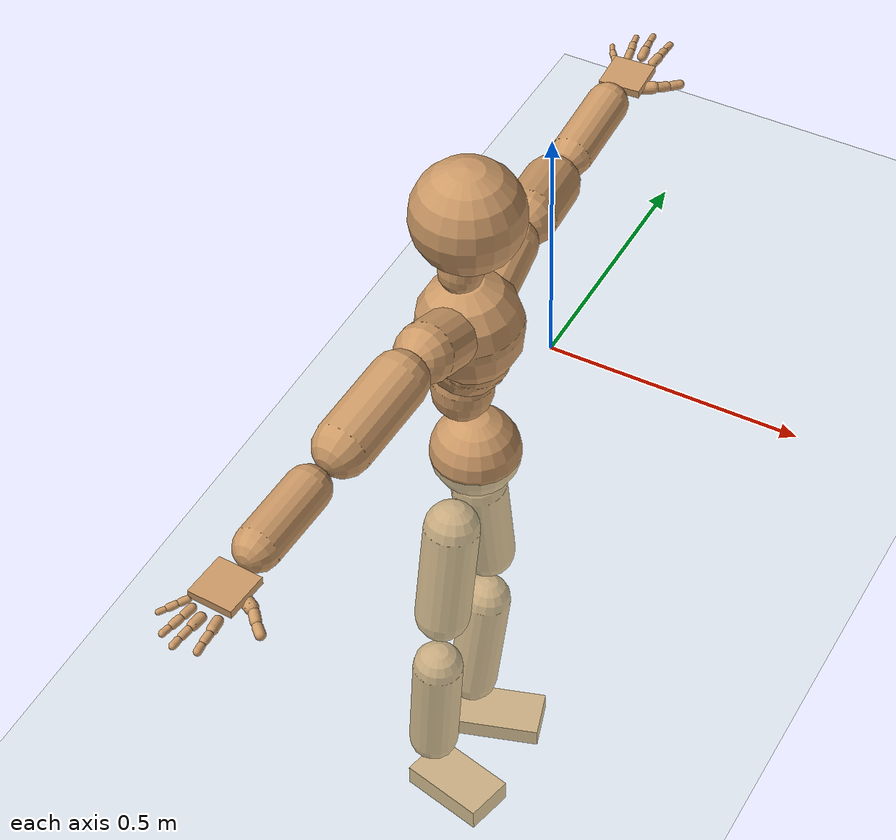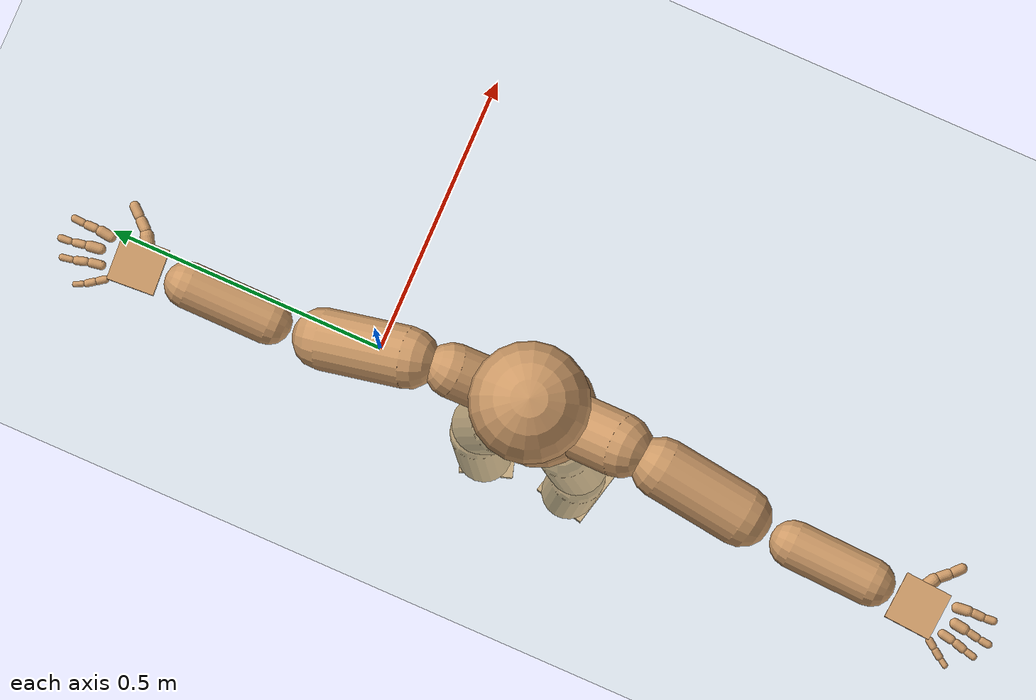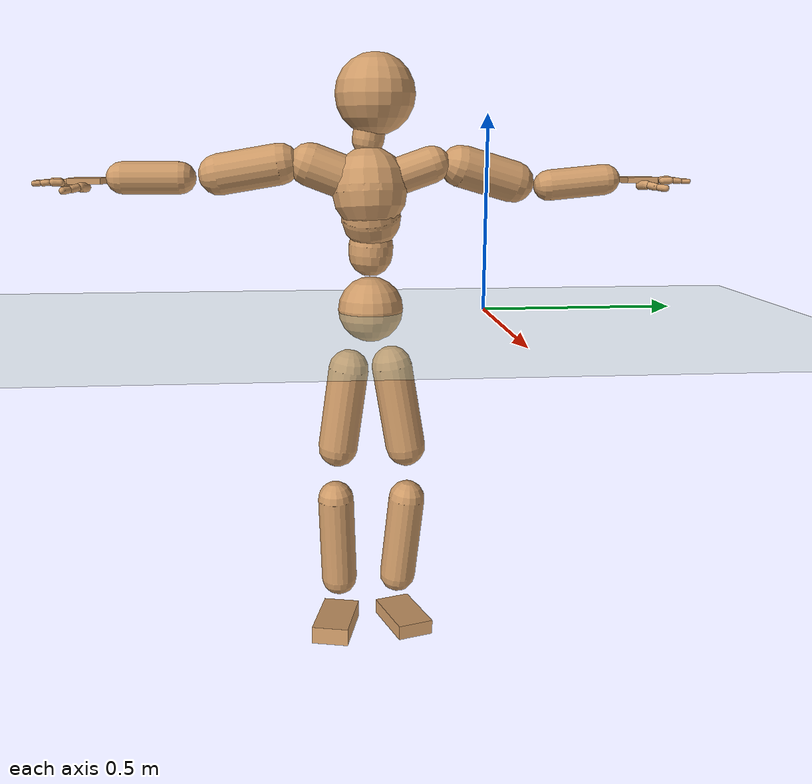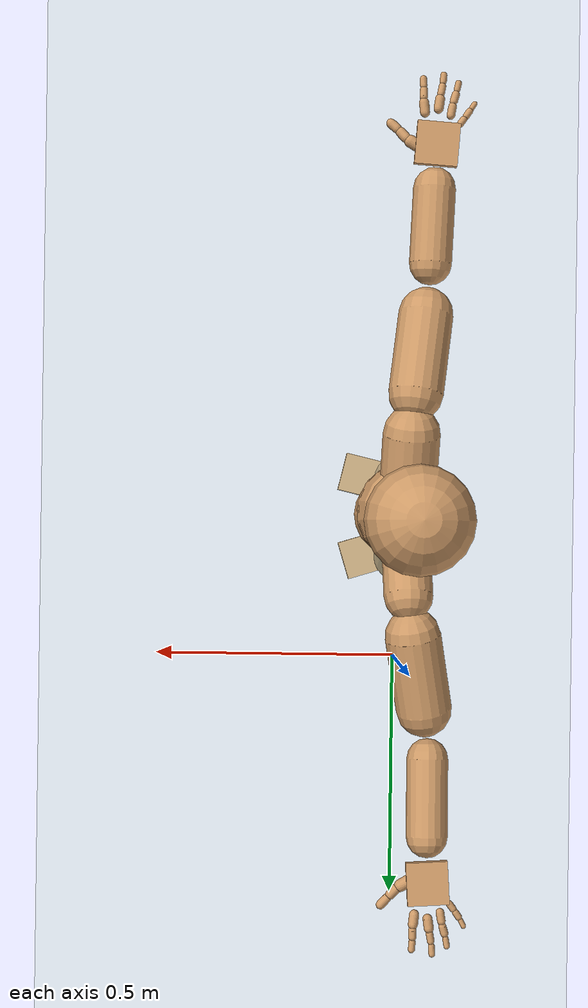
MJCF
<mujoco model="humanoid">
  <compiler coordinate="local" angle="radian"/>
  <default>
    <joint damping="0.0" armature="0.01" stiffness="0.0" limited="true"/>
    <geom conaffinity="1" condim="3" contype="7" margin="0.001" rgba="0.8 0.6 .4 1"/>
  </default>
  <asset>
    <texture type="skybox" builtin="gradient" rgb1=".4 .5 .6" rgb2="0 0 0" width="100" height="100"/>
    <texture builtin="flat" height="1278" mark="cross" markrgb="1 1 1" name="texgeom" random="0.01" rgb1="0.8 0.6 0.4" rgb2="0.8 0.6 0.4" type="cube" width="127"/>
    <texture builtin="checker" height="100" name="texplane" rgb1="0 0 0" rgb2="0.8 0.8 0.8" type="2d" width="100"/>
    <material name="MatPlane" reflectance="0.5" shininess="1" specular="1" texrepeat="60 60" texture="texplane"/>
    <material name="geom" texture="texgeom" texuniform="true"/>
  </asset>
  <worldbody>
    <light cutoff="100" diffuse="1 1 1" dir="-0 0 -1.3" directional="true" exponent="1" pos="0 0 1.3" specular=".1 .1 .1"/>
    <geom conaffinity="1" condim="3" name="floor" pos="0 0 0" rgba="0.8 0.9 0.8 1" size="100 100 .2" type="plane" material="MatPlane"/>
    <body name="Pelvis" pos="0.0006 -0.2986 0.0038">
      <freejoint name="Pelvis"/>
      <geom type="sphere" contype="1" conaffinity="1" density="500" size="0.0849" pos="0.0000 0.0000 0.0000" name="Pelvis"/>
      <body name="L_Hip" pos="-0.0257 0.0457 -0.0832">
        <joint name="L_Hip_x" type="hinge" pos="0 0 0" axis="1 0 0" stiffness="800" damping="80" armature="0.02" range="-180.0000 180.0000"/>
        <joint name="L_Hip_y" type="hinge" pos="0 0 0" axis="0 1 0" stiffness="800" damping="80" armature="0.02" range="-180.0000 180.0000"/>
        <joint name="L_Hip_z" type="hinge" pos="0 0 0" axis="0 0 1" stiffness="800" damping="80" armature="0.02" range="-180.0000 180.0000"/>
        <geom type="capsule" contype="1" conaffinity="1" density="500" fromto="-0.0015 0.0129 -0.0760 -0.0060 0.0514 -0.3039" size="0.0535" name="L_Hip"/>
        <body name="L_Knee" pos="-0.0076 0.0643 -0.3799">
          <joint name="L_Knee_x" type="hinge" pos="0 0 0" axis="1 0 0" stiffness="800" damping="80" armature="0.02" range="-180.0000 180.0000"/>
          <joint name="L_Knee_y" type="hinge" pos="0 0 0" axis="0 1 0" stiffness="800" damping="80" armature="0.02" range="-180.0000 180.0000"/>
          <joint name="L_Knee_z" type="hinge" pos="0 0 0" axis="0 0 1" stiffness="800" damping="80" armature="0.02" range="-180.0000 180.0000"/>
          <geom type="capsule" contype="1" conaffinity="1" density="500" fromto="-0.0071 -0.0075 -0.0782 -0.0285 -0.0300 -0.3129" size="0.0495" name="L_Knee"/>
          <body name="L_Ankle" pos="-0.0356 -0.0375 -0.3911">
            <joint name="L_Ankle_x" type="hinge" pos="0 0 0" axis="1 0 0" stiffness="800" damping="80" armature="0.02" range="-180.0000 180.0000"/>
            <joint name="L_Ankle_y" type="hinge" pos="0 0 0" axis="0 1 0" stiffness="800" damping="80" armature="0.02" range="-180.0000 180.0000"/>
            <joint name="L_Ankle_z" type="hinge" pos="0 0 0" axis="0 0 1" stiffness="800" damping="80" armature="0.02" range="-180.0000 180.0000"/>
            <geom type="box" contype="1" conaffinity="1" density="500" pos="0.0625 0.0191 -0.0278" size="0.087 0.0493 0.0195" quat="0.9890 0.0000 0.0000 0.1477" name="L_Ankle"/>
            <body name="L_Toe" pos="0.125 0.0382 -0.0555">
              <joint name="L_Toe_x" type="hinge" pos="0 0 0" axis="1 0 0" stiffness="500" damping="50" armature="0.02" range="-180.0000 180.0000"/>
              <joint name="L_Toe_y" type="hinge" pos="0 0 0" axis="0 1 0" stiffness="500" damping="50" armature="0.02" range="-180.0000 180.0000"/>
              <joint name="L_Toe_z" type="hinge" pos="0 0 0" axis="0 0 1" stiffness="500" damping="50" armature="0.02" range="-180.0000 180.0000"/>
              <geom type="box" contype="1" conaffinity="1" density="500" pos="0.0000 0.0000 0.0290" size="0.001 0.0024 0.001" quat="0.9883 0.0000 0.0000 0.1527" name="L_Toe"/>
            </body>
          </body>
        </body>
      </body>
      <body name="R_Hip" pos="-0.0186 -0.0474 -0.0931">
        <joint name="R_Hip_x" type="hinge" pos="0 0 0" axis="1 0 0" stiffness="800" damping="80" armature="0.02" range="-180.0000 180.0000"/>
        <joint name="R_Hip_y" type="hinge" pos="0 0 0" axis="0 1 0" stiffness="800" damping="80" armature="0.02" range="-180.0000 180.0000"/>
        <joint name="R_Hip_z" type="hinge" pos="0 0 0" axis="0 0 1" stiffness="800" damping="80" armature="0.02" range="-180.0000 180.0000"/>
        <geom type="capsule" contype="1" conaffinity="1" density="500" fromto="-0.0030 -0.0100 -0.0728 -0.0119 -0.0398 -0.2910" size="0.0534" name="R_Hip"/>
        <body name="R_Knee" pos="-0.0148 -0.0498 -0.3638">
          <joint name="R_Knee_x" type="hinge" pos="0 0 0" axis="1 0 0" stiffness="800" damping="80" armature="0.02" range="-180.0000 180.0000"/>
          <joint name="R_Knee_y" type="hinge" pos="0 0 0" axis="0 1 0" stiffness="800" damping="80" armature="0.02" range="-180.0000 180.0000"/>
          <joint name="R_Knee_z" type="hinge" pos="0 0 0" axis="0 0 1" stiffness="800" damping="80" armature="0.02" range="-180.0000 180.0000"/>
          <geom type="capsule" contype="1" conaffinity="1" density="500" fromto="-0.0071 0.0029 -0.0808 -0.0282 0.0114 -0.3232" size="0.0491" name="R_Knee"/>
          <body name="R_Ankle" pos="-0.0353 0.0143 -0.404">
            <joint name="R_Ankle_x" type="hinge" pos="0 0 0" axis="1 0 0" stiffness="800" damping="80" armature="0.02" range="-180.0000 180.0000"/>
            <joint name="R_Ankle_y" type="hinge" pos="0 0 0" axis="0 1 0" stiffness="800" damping="80" armature="0.02" range="-180.0000 180.0000"/>
            <joint name="R_Ankle_z" type="hinge" pos="0 0 0" axis="0 0 1" stiffness="800" damping="80" armature="0.02" range="-180.0000 180.0000"/>
            <geom type="box" contype="1" conaffinity="1" density="500" pos="0.0657 -0.0157 -0.0274" size="0.087 0.0493 0.0235" quat="0.9931 0.0000 0.0000 -0.1171" name="R_Ankle"/>
            <body name="R_Toe" pos="0.1313 -0.0314 -0.0549">
              <joint name="R_Toe_x" type="hinge" pos="0 0 0" axis="1 0 0" stiffness="500" damping="50" armature="0.02" range="-180.0000 180.0000"/>
              <joint name="R_Toe_y" type="hinge" pos="0 0 0" axis="0 1 0" stiffness="500" damping="50" armature="0.02" range="-180.0000 180.0000"/>
              <joint name="R_Toe_z" type="hinge" pos="0 0 0" axis="0 0 1" stiffness="500" damping="50" armature="0.02" range="-180.0000 180.0000"/>
              <geom type="box" contype="1" conaffinity="1" density="500" pos="0.0000 0.0000 0.0247" size="0.001 0.0024 0.001" quat="0.9941 0.0000 0.0000 -0.1084" name="R_Toe"/>
            </body>
          </body>
        </body>
      </body>
      <body name="Torso" pos="-0.0278 0.0002 0.0907">
        <joint name="Torso_x" type="hinge" pos="0 0 0" axis="1 0 0" stiffness="1000" damping="100" armature="0.02" range="-180.0000 180.0000"/>
        <joint name="Torso_y" type="hinge" pos="0 0 0" axis="0 1 0" stiffness="1000" damping="100" armature="0.02" range="-180.0000 180.0000"/>
        <joint name="Torso_z" type="hinge" pos="0 0 0" axis="0 0 1" stiffness="1000" damping="100" armature="0.02" range="-180.0000 180.0000"/>
        <geom type="capsule" contype="1" conaffinity="1" density="500" fromto="0.0041 0.0027 0.0748 0.0027 0.0018 0.0499" size="0.0575" name="Torso"/>
        <body name="Spine" pos="0.0069 0.0046 0.1247">
          <joint name="Spine_x" type="hinge" pos="0 0 0" axis="1 0 0" stiffness="1000" damping="100" armature="0.02" range="-180.0000 180.0000"/>
          <joint name="Spine_y" type="hinge" pos="0 0 0" axis="0 1 0" stiffness="1000" damping="100" armature="0.02" range="-180.0000 180.0000"/>
          <joint name="Spine_z" type="hinge" pos="0 0 0" axis="0 0 1" stiffness="1000" damping="100" armature="0.02" range="-180.0000 180.0000"/>
          <geom type="capsule" contype="1" conaffinity="1" density="500" fromto="0.0122 -0.0034 0.0295 0.0081 -0.0023 0.0197" size="0.0773" name="Spine"/>
          <body name="Chest" pos="0.0203 -0.0057 0.0492">
            <joint name="Chest_x" type="hinge" pos="0 0 0" axis="1 0 0" stiffness="1000" damping="100" armature="0.02" range="-180.0000 180.0000"/>
            <joint name="Chest_y" type="hinge" pos="0 0 0" axis="0 1 0" stiffness="1000" damping="100" armature="0.02" range="-180.0000 180.0000"/>
            <joint name="Chest_z" type="hinge" pos="0 0 0" axis="0 0 1" stiffness="1000" damping="100" armature="0.02" range="-180.0000 180.0000"/>
            <geom type="capsule" contype="1" conaffinity="1" density="500" fromto="-0.0052 -0.0017 0.0542 -0.0035 -0.0012 0.0362" size="0.0971" name="Chest"/>
            <body name="Neck" pos="-0.0204 -0.0081 0.1392">
              <joint name="Neck_x" type="hinge" pos="0 0 0" axis="1 0 0" stiffness="500" damping="50" armature="0.02" range="-180.0000 180.0000"/>
              <joint name="Neck_y" type="hinge" pos="0 0 0" axis="0 1 0" stiffness="500" damping="50" armature="0.02" range="-180.0000 180.0000"/>
              <joint name="Neck_z" type="hinge" pos="0 0 0" axis="0 0 1" stiffness="500" damping="50" armature="0.02" range="-180.0000 180.0000"/>
              <geom type="capsule" contype="1" conaffinity="1" density="500" fromto="0.0016 0.0045 0.0280 0.0064 0.0181 0.1122" size="0.0409" name="Neck"/>
              <body name="Head" pos="0.0081 0.0226 0.1402">
                <joint name="Head_x" type="hinge" pos="0 0 0" axis="1 0 0" stiffness="500" damping="50" armature="0.02" range="-180.0000 180.0000"/>
                <joint name="Head_y" type="hinge" pos="0 0 0" axis="0 1 0" stiffness="500" damping="50" armature="0.02" range="-180.0000 180.0000"/>
                <joint name="Head_z" type="hinge" pos="0 0 0" axis="0 0 1" stiffness="500" damping="50" armature="0.02" range="-180.0000 180.0000"/>
                <geom type="sphere" contype="1" conaffinity="1" density="500" size="0.1024" pos="0.0000 0.0000 0.0000" name="Head"/>
              </body>
            </body>
            <body name="L_Thorax" pos="-0.0013 0.044 0.066">
              <joint name="L_Thorax_x" type="hinge" pos="0 0 0" axis="1 0 0" stiffness="500" damping="50" armature="0.02" range="-180.0000 180.0000"/>
              <joint name="L_Thorax_y" type="hinge" pos="0 0 0" axis="0 1 0" stiffness="500" damping="50" armature="0.02" range="-180.0000 180.0000"/>
              <joint name="L_Thorax_z" type="hinge" pos="0 0 0" axis="0 0 1" stiffness="500" damping="50" armature="0.02" range="-180.0000 180.0000"/>
              <geom type="capsule" contype="1" conaffinity="1" density="500" fromto="-0.0010 0.0286 0.0099 -0.0041 0.1143 0.0396" size="0.0473" name="L_Thorax"/>
              <body name="L_Shoulder" pos="-0.0052 0.1429 0.0495">
                <joint name="L_Shoulder_x" type="hinge" pos="0 0 0" axis="1 0 0" stiffness="500" damping="50" armature="0.02" range="-180.0000 180.0000"/>
                <joint name="L_Shoulder_y" type="hinge" pos="0 0 0" axis="0 1 0" stiffness="500" damping="50" armature="0.02" range="-180.0000 180.0000"/>
                <joint name="L_Shoulder_z" type="hinge" pos="0 0 0" axis="0 0 1" stiffness="500" damping="50" armature="0.02" range="-180.0000 180.0000"/>
                <geom type="capsule" contype="1" conaffinity="1" density="500" fromto="-0.0087 0.0478 -0.0140 -0.0349 0.1914 -0.0559" size="0.0536" name="L_Shoulder"/>
                <body name="L_Elbow" pos="-0.0437 0.2392 -0.0699">
                  <joint name="L_Elbow_x" type="hinge" pos="0 0 0" axis="1 0 0" stiffness="500" damping="50" armature="0.02" range="-720.0000 720.0000"/>
                  <joint name="L_Elbow_y" type="hinge" pos="0 0 0" axis="0 1 0" stiffness="500" damping="50" armature="0.02" range="-720.0000 720.0000"/>
                  <joint name="L_Elbow_z" type="hinge" pos="0 0 0" axis="0 0 1" stiffness="500" damping="50" armature="0.02" range="-720.0000 720.0000"/>
                  <geom type="capsule" contype="1" conaffinity="1" density="500" fromto="0.0000 0.0495 0.0047 0.0002 0.1978 0.0189" size="0.0402" name="L_Elbow"/>
                  <body name="L_Wrist" pos="0.0002 0.2473 0.0236">
                    <joint name="L_Wrist_x" type="hinge" pos="0 0 0" axis="1 0 0" stiffness="300" damping="30" armature="0.02" range="-180.0000 180.0000"/>
                    <joint name="L_Wrist_y" type="hinge" pos="0 0 0" axis="0 1 0" stiffness="300" damping="30" armature="0.02" range="-180.0000 180.0000"/>
                    <joint name="L_Wrist_z" type="hinge" pos="0 0 0" axis="0 0 1" stiffness="300" damping="30" armature="0.02" range="-180.0000 180.0000"/>
                    <geom type="box" contype="1" conaffinity="1" density="500" pos="-0.0025 0.0402 -0.0055" size="0.0417 0.0404 0.0076" quat="0.7288 0.0000 0.0000 -0.6847" name="L_Wrist"/>
                    <body name="L_Index1" pos="0.0213 0.0949 -0.008">
                      <joint name="L_Index1_x" type="hinge" pos="0 0 0" axis="1 0 0" stiffness="100" damping="10" armature="0.02" range="-180.0000 180.0000"/>
                      <joint name="L_Index1_y" type="hinge" pos="0 0 0" axis="0 1 0" stiffness="100" damping="10" armature="0.02" range="-180.0000 180.0000"/>
                      <joint name="L_Index1_z" type="hinge" pos="0 0 0" axis="0 0 1" stiffness="100" damping="10" armature="0.02" range="-180.0000 180.0000"/>
                      <geom type="capsule" contype="1" conaffinity="1" density="500" fromto="0.0007 0.0064 0.0003 0.0029 0.0255 0.0013" size="0.0094" name="L_Index1"/>
                      <body name="L_Index2" pos="0.0036 0.0319 0.0017">
                        <joint name="L_Index2_x" type="hinge" pos="0 0 0" axis="1 0 0" stiffness="100" damping="10" armature="0.02" range="-180.0000 180.0000"/>
                        <joint name="L_Index2_y" type="hinge" pos="0 0 0" axis="0 1 0" stiffness="100" damping="10" armature="0.02" range="-180.0000 180.0000"/>
                        <joint name="L_Index2_z" type="hinge" pos="0 0 0" axis="0 0 1" stiffness="100" damping="10" armature="0.02" range="-180.0000 180.0000"/>
                        <geom type="capsule" contype="1" conaffinity="1" density="500" fromto="-0.0000 0.0045 -0.0005 -0.0002 0.0182 -0.0020" size="0.0077" name="L_Index2"/>
                        <body name="L_Index3" pos="-0.0002 0.0227 -0.0025">
                          <joint name="L_Index3_x" type="hinge" pos="0 0 0" axis="1 0 0" stiffness="100" damping="10" armature="0.02" range="-180.0000 180.0000"/>
                          <joint name="L_Index3_y" type="hinge" pos="0 0 0" axis="0 1 0" stiffness="100" damping="10" armature="0.02" range="-180.0000 180.0000"/>
                          <joint name="L_Index3_z" type="hinge" pos="0 0 0" axis="0 0 1" stiffness="100" damping="10" armature="0.02" range="-180.0000 180.0000"/>
                          <geom type="capsule" contype="1" conaffinity="1" density="500" fromto="0.0004 0.0049 -0.0001 0.0014 0.0198 -0.0004" size="0.0066" name="L_Index3"/>
                        </body>
                      </body>
                    </body>
                    <body name="L_Middle1" pos="-0.0029 0.1026 -0.0057">
                      <joint name="L_Middle1_x" type="hinge" pos="0 0 0" axis="1 0 0" stiffness="100" damping="10" armature="0.02" range="-180.0000 180.0000"/>
                      <joint name="L_Middle1_y" type="hinge" pos="0 0 0" axis="0 1 0" stiffness="100" damping="10" armature="0.02" range="-180.0000 180.0000"/>
                      <joint name="L_Middle1_z" type="hinge" pos="0 0 0" axis="0 0 1" stiffness="100" damping="10" armature="0.02" range="-180.0000 180.0000"/>
                      <geom type="capsule" contype="1" conaffinity="1" density="500" fromto="-0.0009 0.0061 0.0000 -0.0035 0.0245 0.0002" size="0.0094" name="L_Middle1"/>
                      <body name="L_Middle2" pos="-0.0044 0.0307 0.0002">
                        <joint name="L_Middle2_x" type="hinge" pos="0 0 0" axis="1 0 0" stiffness="100" damping="10" armature="0.02" range="-180.0000 180.0000"/>
                        <joint name="L_Middle2_y" type="hinge" pos="0 0 0" axis="0 1 0" stiffness="100" damping="10" armature="0.02" range="-180.0000 180.0000"/>
                        <joint name="L_Middle2_z" type="hinge" pos="0 0 0" axis="0 0 1" stiffness="100" damping="10" armature="0.02" range="-180.0000 180.0000"/>
                        <geom type="capsule" contype="1" conaffinity="1" density="500" fromto="-0.0009 0.0047 -0.0005 -0.0034 0.0188 -0.0021" size="0.0071" name="L_Middle2"/>
                        <body name="L_Middle3" pos="-0.0043 0.0235 -0.0026">
                          <joint name="L_Middle3_x" type="hinge" pos="0 0 0" axis="1 0 0" stiffness="100" damping="10" armature="0.02" range="-180.0000 180.0000"/>
                          <joint name="L_Middle3_y" type="hinge" pos="0 0 0" axis="0 1 0" stiffness="100" damping="10" armature="0.02" range="-180.0000 180.0000"/>
                          <joint name="L_Middle3_z" type="hinge" pos="0 0 0" axis="0 0 1" stiffness="100" damping="10" armature="0.02" range="-180.0000 180.0000"/>
                          <geom type="capsule" contype="1" conaffinity="1" density="500" fromto="-0.0005 0.0051 -0.0001 -0.0018 0.0204 -0.0005" size="0.0063" name="L_Middle3"/>
                        </body>
                      </body>
                    </body>
                    <body name="L_Pinky1" pos="-0.0441 0.0779 -0.0141">
                      <joint name="L_Pinky1_x" type="hinge" pos="0 0 0" axis="1 0 0" stiffness="100" damping="10" armature="0.02" range="-180.0000 180.0000"/>
                      <joint name="L_Pinky1_y" type="hinge" pos="0 0 0" axis="0 1 0" stiffness="100" damping="10" armature="0.02" range="-180.0000 180.0000"/>
                      <joint name="L_Pinky1_z" type="hinge" pos="0 0 0" axis="0 0 1" stiffness="100" damping="10" armature="0.02" range="-180.0000 180.0000"/>
                      <geom type="capsule" contype="1" conaffinity="1" density="500" fromto="-0.0024 0.0033 -0.0003 -0.0096 0.0131 -0.0013" size="0.0067" name="L_Pinky1"/>
                      <body name="L_Pinky2" pos="-0.0119 0.0163 -0.0016">
                        <joint name="L_Pinky2_x" type="hinge" pos="0 0 0" axis="1 0 0" stiffness="100" damping="10" armature="0.02" range="-180.0000 180.0000"/>
                        <joint name="L_Pinky2_y" type="hinge" pos="0 0 0" axis="0 1 0" stiffness="100" damping="10" armature="0.02" range="-180.0000 180.0000"/>
                        <joint name="L_Pinky2_z" type="hinge" pos="0 0 0" axis="0 0 1" stiffness="100" damping="10" armature="0.02" range="-180.0000 180.0000"/>
                        <geom type="capsule" contype="1" conaffinity="1" density="500" fromto="-0.0022 0.0032 -0.0004 -0.0089 0.0128 -0.0015" size="0.0066" name="L_Pinky2"/>
                        <body name="L_Pinky3" pos="-0.0111 0.0161 -0.0019">
                          <joint name="L_Pinky3_x" type="hinge" pos="0 0 0" axis="1 0 0" stiffness="100" damping="10" armature="0.02" range="-180.0000 180.0000"/>
                          <joint name="L_Pinky3_y" type="hinge" pos="0 0 0" axis="0 1 0" stiffness="100" damping="10" armature="0.02" range="-180.0000 180.0000"/>
                          <joint name="L_Pinky3_z" type="hinge" pos="0 0 0" axis="0 0 1" stiffness="100" damping="10" armature="0.02" range="-180.0000 180.0000"/>
                          <geom type="capsule" contype="1" conaffinity="1" density="500" fromto="-0.0018 0.0036 0.0000 -0.0073 0.0144 0.0001" size="0.005" name="L_Pinky3"/>
                        </body>
                      </body>
                    </body>
                    <body name="L_Ring1" pos="-0.0269 0.0909 -0.0088">
                      <joint name="L_Ring1_x" type="hinge" pos="0 0 0" axis="1 0 0" stiffness="100" damping="10" armature="0.02" range="-180.0000 180.0000"/>
                      <joint name="L_Ring1_y" type="hinge" pos="0 0 0" axis="0 1 0" stiffness="100" damping="10" armature="0.02" range="-180.0000 180.0000"/>
                      <joint name="L_Ring1_z" type="hinge" pos="0 0 0" axis="0 0 1" stiffness="100" damping="10" armature="0.02" range="-180.0000 180.0000"/>
                      <geom type="capsule" contype="1" conaffinity="1" density="500" fromto="-0.0010 0.0057 0.0001 -0.0039 0.0227 0.0003" size="0.008" name="L_Ring1"/>
                      <body name="L_Ring2" pos="-0.0049 0.0283 0.0004">
                        <joint name="L_Ring2_x" type="hinge" pos="0 0 0" axis="1 0 0" stiffness="100" damping="10" armature="0.02" range="-180.0000 180.0000"/>
                        <joint name="L_Ring2_y" type="hinge" pos="0 0 0" axis="0 1 0" stiffness="100" damping="10" armature="0.02" range="-180.0000 180.0000"/>
                        <joint name="L_Ring2_z" type="hinge" pos="0 0 0" axis="0 0 1" stiffness="100" damping="10" armature="0.02" range="-180.0000 180.0000"/>
                        <geom type="capsule" contype="1" conaffinity="1" density="500" fromto="-0.0013 0.0046 -0.0005 -0.0053 0.0185 -0.0019" size="0.0076" name="L_Ring2"/>
                        <body name="L_Ring3" pos="-0.0066 0.0231 -0.0023">
                          <joint name="L_Ring3_x" type="hinge" pos="0 0 0" axis="1 0 0" stiffness="100" damping="10" armature="0.02" range="-180.0000 180.0000"/>
                          <joint name="L_Ring3_y" type="hinge" pos="0 0 0" axis="0 1 0" stiffness="100" damping="10" armature="0.02" range="-180.0000 180.0000"/>
                          <joint name="L_Ring3_z" type="hinge" pos="0 0 0" axis="0 0 1" stiffness="100" damping="10" armature="0.02" range="-180.0000 180.0000"/>
                          <geom type="capsule" contype="1" conaffinity="1" density="500" fromto="-0.0009 0.0050 -0.0001 -0.0037 0.0201 -0.0003" size="0.0059" name="L_Ring3"/>
                        </body>
                      </body>
                    </body>
                    <body name="L_Thumb1" pos="0.0274 0.0354 -0.0188">
                      <joint name="L_Thumb1_x" type="hinge" pos="0 0 0" axis="1 0 0" stiffness="100" damping="10" armature="0.02" range="-180.0000 180.0000"/>
                      <joint name="L_Thumb1_y" type="hinge" pos="0 0 0" axis="0 1 0" stiffness="100" damping="10" armature="0.02" range="-180.0000 180.0000"/>
                      <joint name="L_Thumb1_z" type="hinge" pos="0 0 0" axis="0 0 1" stiffness="100" damping="10" armature="0.02" range="-180.0000 180.0000"/>
                      <geom type="capsule" contype="1" conaffinity="1" density="500" fromto="0.0054 0.0031 0.0003 0.0215 0.0124 0.0013" size="0.0121" name="L_Thumb1"/>
                      <body name="L_Thumb2" pos="0.0268 0.0154 0.0016">
                        <joint name="L_Thumb2_x" type="hinge" pos="0 0 0" axis="1 0 0" stiffness="100" damping="10" armature="0.02" range="-180.0000 180.0000"/>
                        <joint name="L_Thumb2_y" type="hinge" pos="0 0 0" axis="0 1 0" stiffness="100" damping="10" armature="0.02" range="-180.0000 180.0000"/>
                        <joint name="L_Thumb2_z" type="hinge" pos="0 0 0" axis="0 0 1" stiffness="100" damping="10" armature="0.02" range="-180.0000 180.0000"/>
                        <geom type="capsule" contype="1" conaffinity="1" density="500" fromto="0.0034 0.0038 -0.0010 0.0135 0.0152 -0.0039" size="0.0097" name="L_Thumb2"/>
                        <body name="L_Thumb3" pos="0.0169 0.019 -0.0048">
                          <joint name="L_Thumb3_x" type="hinge" pos="0 0 0" axis="1 0 0" stiffness="100" damping="10" armature="0.02" range="-180.0000 180.0000"/>
                          <joint name="L_Thumb3_y" type="hinge" pos="0 0 0" axis="0 1 0" stiffness="100" damping="10" armature="0.02" range="-180.0000 180.0000"/>
                          <joint name="L_Thumb3_z" type="hinge" pos="0 0 0" axis="0 0 1" stiffness="100" damping="10" armature="0.02" range="-180.0000 180.0000"/>
                          <geom type="capsule" contype="1" conaffinity="1" density="500" fromto="0.0038 0.0042 -0.0006 0.0151 0.0168 -0.0023" size="0.009" name="L_Thumb3"/>
                        </body>
                      </body>
                    </body>
                  </body>
                </body>
              </body>
            </body>
            <body name="R_Thorax" pos="-0.0044 -0.0445 0.066">
              <joint name="R_Thorax_x" type="hinge" pos="0 0 0" axis="1 0 0" stiffness="500" damping="50" armature="0.02" range="-180.0000 180.0000"/>
              <joint name="R_Thorax_y" type="hinge" pos="0 0 0" axis="0 1 0" stiffness="500" damping="50" armature="0.02" range="-180.0000 180.0000"/>
              <joint name="R_Thorax_z" type="hinge" pos="0 0 0" axis="0 0 1" stiffness="500" damping="50" armature="0.02" range="-180.0000 180.0000"/>
              <geom type="capsule" contype="1" conaffinity="1" density="500" fromto="-0.0007 -0.0265 0.0100 -0.0028 -0.1060 0.0400" size="0.0551" name="R_Thorax"/>
              <body name="R_Shoulder" pos="-0.0035 -0.1324 0.05">
                <joint name="R_Shoulder_x" type="hinge" pos="0 0 0" axis="1 0 0" stiffness="500" damping="50" armature="0.02" range="-180.0000 180.0000"/>
                <joint name="R_Shoulder_y" type="hinge" pos="0 0 0" axis="0 1 0" stiffness="500" damping="50" armature="0.02" range="-180.0000 180.0000"/>
                <joint name="R_Shoulder_z" type="hinge" pos="0 0 0" axis="0 0 1" stiffness="500" damping="50" armature="0.02" range="-180.0000 180.0000"/>
                <geom type="capsule" contype="1" conaffinity="1" density="500" fromto="-0.0063 -0.0511 -0.0087 -0.0251 -0.2045 -0.0347" size="0.0528" name="R_Shoulder"/>
                <body name="R_Elbow" pos="-0.0314 -0.2557 -0.0434">
                  <joint name="R_Elbow_x" type="hinge" pos="0 0 0" axis="1 0 0" stiffness="500" damping="50" armature="0.02" range="-720.0000 720.0000"/>
                  <joint name="R_Elbow_y" type="hinge" pos="0 0 0" axis="0 1 0" stiffness="500" damping="50" armature="0.02" range="-720.0000 720.0000"/>
                  <joint name="R_Elbow_z" type="hinge" pos="0 0 0" axis="0 0 1" stiffness="500" damping="50" armature="0.02" range="-720.0000 720.0000"/>
                  <geom type="capsule" contype="1" conaffinity="1" density="500" fromto="-0.0019 -0.0481 0.0000 -0.0078 -0.1923 0.0001" size="0.0411" name="R_Elbow"/>
                  <body name="R_Wrist" pos="-0.0097 -0.2404 0.0001">
                    <joint name="R_Wrist_x" type="hinge" pos="0 0 0" axis="1 0 0" stiffness="300" damping="30" armature="0.02" range="-180.0000 180.0000"/>
                    <joint name="R_Wrist_y" type="hinge" pos="0 0 0" axis="0 1 0" stiffness="300" damping="30" armature="0.02" range="-180.0000 180.0000"/>
                    <joint name="R_Wrist_z" type="hinge" pos="0 0 0" axis="0 0 1" stiffness="300" damping="30" armature="0.02" range="-180.0000 180.0000"/>
                    <geom type="box" contype="1" conaffinity="1" density="500" pos="-0.0030 -0.0400 -0.0072" size="0.0417 0.0415 0.0077" quat="0.7329 0.0000 0.0000 0.6804" name="R_Wrist"/>
                    <body name="R_Index1" pos="0.0204 -0.0946 -0.0113">
                      <joint name="R_Index1_x" type="hinge" pos="0 0 0" axis="1 0 0" stiffness="100" damping="10" armature="0.02" range="-180.0000 180.0000"/>
                      <joint name="R_Index1_y" type="hinge" pos="0 0 0" axis="0 1 0" stiffness="100" damping="10" armature="0.02" range="-180.0000 180.0000"/>
                      <joint name="R_Index1_z" type="hinge" pos="0 0 0" axis="0 0 1" stiffness="100" damping="10" armature="0.02" range="-180.0000 180.0000"/>
                      <geom type="capsule" contype="1" conaffinity="1" density="500" fromto="0.0007 -0.0064 0.0003 0.0029 -0.0255 0.0013" size="0.0094" name="R_Index1"/>
                      <body name="R_Index2" pos="0.0036 -0.0319 0.0017">
                        <joint name="R_Index2_x" type="hinge" pos="0 0 0" axis="1 0 0" stiffness="100" damping="10" armature="0.02" range="-180.0000 180.0000"/>
                        <joint name="R_Index2_y" type="hinge" pos="0 0 0" axis="0 1 0" stiffness="100" damping="10" armature="0.02" range="-180.0000 180.0000"/>
                        <joint name="R_Index2_z" type="hinge" pos="0 0 0" axis="0 0 1" stiffness="100" damping="10" armature="0.02" range="-180.0000 180.0000"/>
                        <geom type="capsule" contype="1" conaffinity="1" density="500" fromto="-0.0000 -0.0045 -0.0005 -0.0002 -0.0182 -0.0020" size="0.0077" name="R_Index2"/>
                        <body name="R_Index3" pos="-0.0002 -0.0227 -0.0025">
                          <joint name="R_Index3_x" type="hinge" pos="0 0 0" axis="1 0 0" stiffness="100" damping="10" armature="0.02" range="-180.0000 180.0000"/>
                          <joint name="R_Index3_y" type="hinge" pos="0 0 0" axis="0 1 0" stiffness="100" damping="10" armature="0.02" range="-180.0000 180.0000"/>
                          <joint name="R_Index3_z" type="hinge" pos="0 0 0" axis="0 0 1" stiffness="100" damping="10" armature="0.02" range="-180.0000 180.0000"/>
                          <geom type="capsule" contype="1" conaffinity="1" density="500" fromto="0.0004 -0.0041 -0.0001 0.0014 -0.0166 -0.0004" size="0.0069" name="R_Index3"/>
                        </body>
                      </body>
                    </body>
                    <body name="R_Middle1" pos="-0.0038 -0.1023 -0.0091">
                      <joint name="R_Middle1_x" type="hinge" pos="0 0 0" axis="1 0 0" stiffness="100" damping="10" armature="0.02" range="-180.0000 180.0000"/>
                      <joint name="R_Middle1_y" type="hinge" pos="0 0 0" axis="0 1 0" stiffness="100" damping="10" armature="0.02" range="-180.0000 180.0000"/>
                      <joint name="R_Middle1_z" type="hinge" pos="0 0 0" axis="0 0 1" stiffness="100" damping="10" armature="0.02" range="-180.0000 180.0000"/>
                      <geom type="capsule" contype="1" conaffinity="1" density="500" fromto="-0.0009 -0.0061 0.0000 -0.0035 -0.0245 0.0002" size="0.0094" name="R_Middle1"/>
                      <body name="R_Middle2" pos="-0.0044 -0.0307 0.0002">
                        <joint name="R_Middle2_x" type="hinge" pos="0 0 0" axis="1 0 0" stiffness="100" damping="10" armature="0.02" range="-180.0000 180.0000"/>
                        <joint name="R_Middle2_y" type="hinge" pos="0 0 0" axis="0 1 0" stiffness="100" damping="10" armature="0.02" range="-180.0000 180.0000"/>
                        <joint name="R_Middle2_z" type="hinge" pos="0 0 0" axis="0 0 1" stiffness="100" damping="10" armature="0.02" range="-180.0000 180.0000"/>
                        <geom type="capsule" contype="1" conaffinity="1" density="500" fromto="-0.0009 -0.0047 -0.0005 -0.0034 -0.0188 -0.0021" size="0.0071" name="R_Middle2"/>
                        <body name="R_Middle3" pos="-0.0043 -0.0235 -0.0026">
                          <joint name="R_Middle3_x" type="hinge" pos="0 0 0" axis="1 0 0" stiffness="100" damping="10" armature="0.02" range="-180.0000 180.0000"/>
                          <joint name="R_Middle3_y" type="hinge" pos="0 0 0" axis="0 1 0" stiffness="100" damping="10" armature="0.02" range="-180.0000 180.0000"/>
                          <joint name="R_Middle3_z" type="hinge" pos="0 0 0" axis="0 0 1" stiffness="100" damping="10" armature="0.02" range="-180.0000 180.0000"/>
                          <geom type="capsule" contype="1" conaffinity="1" density="500" fromto="-0.0005 -0.0043 -0.0001 -0.0018 -0.0172 -0.0005" size="0.0066" name="R_Middle3"/>
                        </body>
                      </body>
                    </body>
                    <body name="R_Pinky1" pos="-0.045 -0.0776 -0.0175">
                      <joint name="R_Pinky1_x" type="hinge" pos="0 0 0" axis="1 0 0" stiffness="100" damping="10" armature="0.02" range="-180.0000 180.0000"/>
                      <joint name="R_Pinky1_y" type="hinge" pos="0 0 0" axis="0 1 0" stiffness="100" damping="10" armature="0.02" range="-180.0000 180.0000"/>
                      <joint name="R_Pinky1_z" type="hinge" pos="0 0 0" axis="0 0 1" stiffness="100" damping="10" armature="0.02" range="-180.0000 180.0000"/>
                      <geom type="capsule" contype="1" conaffinity="1" density="500" fromto="-0.0024 -0.0033 -0.0003 -0.0096 -0.0131 -0.0013" size="0.0067" name="R_Pinky1"/>
                      <body name="R_Pinky2" pos="-0.0119 -0.0163 -0.0016">
                        <joint name="R_Pinky2_x" type="hinge" pos="0 0 0" axis="1 0 0" stiffness="100" damping="10" armature="0.02" range="-180.0000 180.0000"/>
                        <joint name="R_Pinky2_y" type="hinge" pos="0 0 0" axis="0 1 0" stiffness="100" damping="10" armature="0.02" range="-180.0000 180.0000"/>
                        <joint name="R_Pinky2_z" type="hinge" pos="0 0 0" axis="0 0 1" stiffness="100" damping="10" armature="0.02" range="-180.0000 180.0000"/>
                        <geom type="capsule" contype="1" conaffinity="1" density="500" fromto="-0.0022 -0.0032 -0.0004 -0.0089 -0.0128 -0.0015" size="0.0066" name="R_Pinky2"/>
                        <body name="R_Pinky3" pos="-0.0112 -0.0161 -0.0019">
                          <joint name="R_Pinky3_x" type="hinge" pos="0 0 0" axis="1 0 0" stiffness="100" damping="10" armature="0.02" range="-180.0000 180.0000"/>
                          <joint name="R_Pinky3_y" type="hinge" pos="0 0 0" axis="0 1 0" stiffness="100" damping="10" armature="0.02" range="-180.0000 180.0000"/>
                          <joint name="R_Pinky3_z" type="hinge" pos="0 0 0" axis="0 0 1" stiffness="100" damping="10" armature="0.02" range="-180.0000 180.0000"/>
                          <geom type="capsule" contype="1" conaffinity="1" density="500" fromto="-0.0018 -0.0028 0.0000 -0.0073 -0.0112 0.0001" size="0.0052" name="R_Pinky3"/>
                        </body>
                      </body>
                    </body>
                    <body name="R_Ring1" pos="-0.0278 -0.0906 -0.0122">
                      <joint name="R_Ring1_x" type="hinge" pos="0 0 0" axis="1 0 0" stiffness="100" damping="10" armature="0.02" range="-180.0000 180.0000"/>
                      <joint name="R_Ring1_y" type="hinge" pos="0 0 0" axis="0 1 0" stiffness="100" damping="10" armature="0.02" range="-180.0000 180.0000"/>
                      <joint name="R_Ring1_z" type="hinge" pos="0 0 0" axis="0 0 1" stiffness="100" damping="10" armature="0.02" range="-180.0000 180.0000"/>
                      <geom type="capsule" contype="1" conaffinity="1" density="500" fromto="-0.0010 -0.0057 0.0001 -0.0039 -0.0227 0.0003" size="0.008" name="R_Ring1"/>
                      <body name="R_Ring2" pos="-0.0049 -0.0283 0.0004">
                        <joint name="R_Ring2_x" type="hinge" pos="0 0 0" axis="1 0 0" stiffness="100" damping="10" armature="0.02" range="-180.0000 180.0000"/>
                        <joint name="R_Ring2_y" type="hinge" pos="0 0 0" axis="0 1 0" stiffness="100" damping="10" armature="0.02" range="-180.0000 180.0000"/>
                        <joint name="R_Ring2_z" type="hinge" pos="0 0 0" axis="0 0 1" stiffness="100" damping="10" armature="0.02" range="-180.0000 180.0000"/>
                        <geom type="capsule" contype="1" conaffinity="1" density="500" fromto="-0.0013 -0.0046 -0.0005 -0.0053 -0.0185 -0.0019" size="0.0076" name="R_Ring2"/>
                        <body name="R_Ring3" pos="-0.0066 -0.0231 -0.0023">
                          <joint name="R_Ring3_x" type="hinge" pos="0 0 0" axis="1 0 0" stiffness="100" damping="10" armature="0.02" range="-180.0000 180.0000"/>
                          <joint name="R_Ring3_y" type="hinge" pos="0 0 0" axis="0 1 0" stiffness="100" damping="10" armature="0.02" range="-180.0000 180.0000"/>
                          <joint name="R_Ring3_z" type="hinge" pos="0 0 0" axis="0 0 1" stiffness="100" damping="10" armature="0.02" range="-180.0000 180.0000"/>
                          <geom type="capsule" contype="1" conaffinity="1" density="500" fromto="-0.0009 -0.0042 -0.0001 -0.0037 -0.0169 -0.0003" size="0.0062" name="R_Ring3"/>
                        </body>
                      </body>
                    </body>
                    <body name="R_Thumb1" pos="0.0265 -0.0351 -0.0222">
                      <joint name="R_Thumb1_x" type="hinge" pos="0 0 0" axis="1 0 0" stiffness="100" damping="10" armature="0.02" range="-180.0000 180.0000"/>
                      <joint name="R_Thumb1_y" type="hinge" pos="0 0 0" axis="0 1 0" stiffness="100" damping="10" armature="0.02" range="-180.0000 180.0000"/>
                      <joint name="R_Thumb1_z" type="hinge" pos="0 0 0" axis="0 0 1" stiffness="100" damping="10" armature="0.02" range="-180.0000 180.0000"/>
                      <geom type="capsule" contype="1" conaffinity="1" density="500" fromto="0.0054 -0.0031 0.0003 0.0215 -0.0124 0.0013" size="0.0121" name="R_Thumb1"/>
                      <body name="R_Thumb2" pos="0.0268 -0.0154 0.0016">
                        <joint name="R_Thumb2_x" type="hinge" pos="0 0 0" axis="1 0 0" stiffness="100" damping="10" armature="0.02" range="-180.0000 180.0000"/>
                        <joint name="R_Thumb2_y" type="hinge" pos="0 0 0" axis="0 1 0" stiffness="100" damping="10" armature="0.02" range="-180.0000 180.0000"/>
                        <joint name="R_Thumb2_z" type="hinge" pos="0 0 0" axis="0 0 1" stiffness="100" damping="10" armature="0.02" range="-180.0000 180.0000"/>
                        <geom type="capsule" contype="1" conaffinity="1" density="500" fromto="0.0034 -0.0038 -0.0010 0.0135 -0.0152 -0.0039" size="0.0097" name="R_Thumb2"/>
                        <body name="R_Thumb3" pos="0.0169 -0.019 -0.0048">
                          <joint name="R_Thumb3_x" type="hinge" pos="0 0 0" axis="1 0 0" stiffness="100" damping="10" armature="0.02" range="-180.0000 180.0000"/>
                          <joint name="R_Thumb3_y" type="hinge" pos="0 0 0" axis="0 1 0" stiffness="100" damping="10" armature="0.02" range="-180.0000 180.0000"/>
                          <joint name="R_Thumb3_z" type="hinge" pos="0 0 0" axis="0 0 1" stiffness="100" damping="10" armature="0.02" range="-180.0000 180.0000"/>
                          <geom type="capsule" contype="1" conaffinity="1" density="500" fromto="0.0038 -0.0034 -0.0006 0.0151 -0.0136 -0.0023" size="0.0092" name="R_Thumb3"/>
                        </body>
                      </body>
                    </body>
                  </body>
                </body>
              </body>
            </body>
          </body>
        </body>
      </body>
    </body>
  </worldbody>
  <actuator>
    <motor name="L_Hip_x" joint="L_Hip_x" gear="500"/>
    <motor name="L_Hip_y" joint="L_Hip_y" gear="500"/>
    <motor name="L_Hip_z" joint="L_Hip_z" gear="500"/>
    <motor name="L_Knee_x" joint="L_Knee_x" gear="500"/>
    <motor name="L_Knee_y" joint="L_Knee_y" gear="500"/>
    <motor name="L_Knee_z" joint="L_Knee_z" gear="500"/>
    <motor name="L_Ankle_x" joint="L_Ankle_x" gear="500"/>
    <motor name="L_Ankle_y" joint="L_Ankle_y" gear="500"/>
    <motor name="L_Ankle_z" joint="L_Ankle_z" gear="500"/>
    <motor name="L_Toe_x" joint="L_Toe_x" gear="500"/>
    <motor name="L_Toe_y" joint="L_Toe_y" gear="500"/>
    <motor name="L_Toe_z" joint="L_Toe_z" gear="500"/>
    <motor name="R_Hip_x" joint="R_Hip_x" gear="500"/>
    <motor name="R_Hip_y" joint="R_Hip_y" gear="500"/>
    <motor name="R_Hip_z" joint="R_Hip_z" gear="500"/>
    <motor name="R_Knee_x" joint="R_Knee_x" gear="500"/>
    <motor name="R_Knee_y" joint="R_Knee_y" gear="500"/>
    <motor name="R_Knee_z" joint="R_Knee_z" gear="500"/>
    <motor name="R_Ankle_x" joint="R_Ankle_x" gear="500"/>
    <motor name="R_Ankle_y" joint="R_Ankle_y" gear="500"/>
    <motor name="R_Ankle_z" joint="R_Ankle_z" gear="500"/>
    <motor name="R_Toe_x" joint="R_Toe_x" gear="500"/>
    <motor name="R_Toe_y" joint="R_Toe_y" gear="500"/>
    <motor name="R_Toe_z" joint="R_Toe_z" gear="500"/>
    <motor name="Torso_x" joint="Torso_x" gear="500"/>
    <motor name="Torso_y" joint="Torso_y" gear="500"/>
    <motor name="Torso_z" joint="Torso_z" gear="500"/>
    <motor name="Spine_x" joint="Spine_x" gear="500"/>
    <motor name="Spine_y" joint="Spine_y" gear="500"/>
    <motor name="Spine_z" joint="Spine_z" gear="500"/>
    <motor name="Chest_x" joint="Chest_x" gear="500"/>
    <motor name="Chest_y" joint="Chest_y" gear="500"/>
    <motor name="Chest_z" joint="Chest_z" gear="500"/>
    <motor name="Neck_x" joint="Neck_x" gear="500"/>
    <motor name="Neck_y" joint="Neck_y" gear="500"/>
    <motor name="Neck_z" joint="Neck_z" gear="500"/>
    <motor name="Head_x" joint="Head_x" gear="500"/>
    <motor name="Head_y" joint="Head_y" gear="500"/>
    <motor name="Head_z" joint="Head_z" gear="500"/>
    <motor name="L_Thorax_x" joint="L_Thorax_x" gear="500"/>
    <motor name="L_Thorax_y" joint="L_Thorax_y" gear="500"/>
    <motor name="L_Thorax_z" joint="L_Thorax_z" gear="500"/>
    <motor name="L_Shoulder_x" joint="L_Shoulder_x" gear="500"/>
    <motor name="L_Shoulder_y" joint="L_Shoulder_y" gear="500"/>
    <motor name="L_Shoulder_z" joint="L_Shoulder_z" gear="500"/>
    <motor name="L_Elbow_x" joint="L_Elbow_x" gear="500"/>
    <motor name="L_Elbow_y" joint="L_Elbow_y" gear="500"/>
    <motor name="L_Elbow_z" joint="L_Elbow_z" gear="500"/>
    <motor name="L_Wrist_x" joint="L_Wrist_x" gear="500"/>
    <motor name="L_Wrist_y" joint="L_Wrist_y" gear="500"/>
    <motor name="L_Wrist_z" joint="L_Wrist_z" gear="500"/>
    <motor name="L_Index1_x" joint="L_Index1_x" gear="500"/>
    <motor name="L_Index1_y" joint="L_Index1_y" gear="500"/>
    <motor name="L_Index1_z" joint="L_Index1_z" gear="500"/>
    <motor name="L_Index2_x" joint="L_Index2_x" gear="500"/>
    <motor name="L_Index2_y" joint="L_Index2_y" gear="500"/>
    <motor name="L_Index2_z" joint="L_Index2_z" gear="500"/>
    <motor name="L_Index3_x" joint="L_Index3_x" gear="500"/>
    <motor name="L_Index3_y" joint="L_Index3_y" gear="500"/>
    <motor name="L_Index3_z" joint="L_Index3_z" gear="500"/>
    <motor name="L_Middle1_x" joint="L_Middle1_x" gear="500"/>
    <motor name="L_Middle1_y" joint="L_Middle1_y" gear="500"/>
    <motor name="L_Middle1_z" joint="L_Middle1_z" gear="500"/>
    <motor name="L_Middle2_x" joint="L_Middle2_x" gear="500"/>
    <motor name="L_Middle2_y" joint="L_Middle2_y" gear="500"/>
    <motor name="L_Middle2_z" joint="L_Middle2_z" gear="500"/>
    <motor name="L_Middle3_x" joint="L_Middle3_x" gear="500"/>
    <motor name="L_Middle3_y" joint="L_Middle3_y" gear="500"/>
    <motor name="L_Middle3_z" joint="L_Middle3_z" gear="500"/>
    <motor name="L_Pinky1_x" joint="L_Pinky1_x" gear="500"/>
    <motor name="L_Pinky1_y" joint="L_Pinky1_y" gear="500"/>
    <motor name="L_Pinky1_z" joint="L_Pinky1_z" gear="500"/>
    <motor name="L_Pinky2_x" joint="L_Pinky2_x" gear="500"/>
    <motor name="L_Pinky2_y" joint="L_Pinky2_y" gear="500"/>
    <motor name="L_Pinky2_z" joint="L_Pinky2_z" gear="500"/>
    <motor name="L_Pinky3_x" joint="L_Pinky3_x" gear="500"/>
    <motor name="L_Pinky3_y" joint="L_Pinky3_y" gear="500"/>
    <motor name="L_Pinky3_z" joint="L_Pinky3_z" gear="500"/>
    <motor name="L_Ring1_x" joint="L_Ring1_x" gear="500"/>
    <motor name="L_Ring1_y" joint="L_Ring1_y" gear="500"/>
    <motor name="L_Ring1_z" joint="L_Ring1_z" gear="500"/>
    <motor name="L_Ring2_x" joint="L_Ring2_x" gear="500"/>
    <motor name="L_Ring2_y" joint="L_Ring2_y" gear="500"/>
    <motor name="L_Ring2_z" joint="L_Ring2_z" gear="500"/>
    <motor name="L_Ring3_x" joint="L_Ring3_x" gear="500"/>
    <motor name="L_Ring3_y" joint="L_Ring3_y" gear="500"/>
    <motor name="L_Ring3_z" joint="L_Ring3_z" gear="500"/>
    <motor name="L_Thumb1_x" joint="L_Thumb1_x" gear="500"/>
    <motor name="L_Thumb1_y" joint="L_Thumb1_y" gear="500"/>
    <motor name="L_Thumb1_z" joint="L_Thumb1_z" gear="500"/>
    <motor name="L_Thumb2_x" joint="L_Thumb2_x" gear="500"/>
    <motor name="L_Thumb2_y" joint="L_Thumb2_y" gear="500"/>
    <motor name="L_Thumb2_z" joint="L_Thumb2_z" gear="500"/>
    <motor name="L_Thumb3_x" joint="L_Thumb3_x" gear="500"/>
    <motor name="L_Thumb3_y" joint="L_Thumb3_y" gear="500"/>
    <motor name="L_Thumb3_z" joint="L_Thumb3_z" gear="500"/>
    <motor name="R_Thorax_x" joint="R_Thorax_x" gear="500"/>
    <motor name="R_Thorax_y" joint="R_Thorax_y" gear="500"/>
    <motor name="R_Thorax_z" joint="R_Thorax_z" gear="500"/>
    <motor name="R_Shoulder_x" joint="R_Shoulder_x" gear="500"/>
    <motor name="R_Shoulder_y" joint="R_Shoulder_y" gear="500"/>
    <motor name="R_Shoulder_z" joint="R_Shoulder_z" gear="500"/>
    <motor name="R_Elbow_x" joint="R_Elbow_x" gear="500"/>
    <motor name="R_Elbow_y" joint="R_Elbow_y" gear="500"/>
    <motor name="R_Elbow_z" joint="R_Elbow_z" gear="500"/>
    <motor name="R_Wrist_x" joint="R_Wrist_x" gear="500"/>
    <motor name="R_Wrist_y" joint="R_Wrist_y" gear="500"/>
    <motor name="R_Wrist_z" joint="R_Wrist_z" gear="500"/>
    <motor name="R_Index1_x" joint="R_Index1_x" gear="500"/>
    <motor name="R_Index1_y" joint="R_Index1_y" gear="500"/>
    <motor name="R_Index1_z" joint="R_Index1_z" gear="500"/>
    <motor name="R_Index2_x" joint="R_Index2_x" gear="500"/>
    <motor name="R_Index2_y" joint="R_Index2_y" gear="500"/>
    <motor name="R_Index2_z" joint="R_Index2_z" gear="500"/>
    <motor name="R_Index3_x" joint="R_Index3_x" gear="500"/>
    <motor name="R_Index3_y" joint="R_Index3_y" gear="500"/>
    <motor name="R_Index3_z" joint="R_Index3_z" gear="500"/>
    <motor name="R_Middle1_x" joint="R_Middle1_x" gear="500"/>
    <motor name="R_Middle1_y" joint="R_Middle1_y" gear="500"/>
    <motor name="R_Middle1_z" joint="R_Middle1_z" gear="500"/>
    <motor name="R_Middle2_x" joint="R_Middle2_x" gear="500"/>
    <motor name="R_Middle2_y" joint="R_Middle2_y" gear="500"/>
    <motor name="R_Middle2_z" joint="R_Middle2_z" gear="500"/>
    <motor name="R_Middle3_x" joint="R_Middle3_x" gear="500"/>
    <motor name="R_Middle3_y" joint="R_Middle3_y" gear="500"/>
    <motor name="R_Middle3_z" joint="R_Middle3_z" gear="500"/>
    <motor name="R_Pinky1_x" joint="R_Pinky1_x" gear="500"/>
    <motor name="R_Pinky1_y" joint="R_Pinky1_y" gear="500"/>
    <motor name="R_Pinky1_z" joint="R_Pinky1_z" gear="500"/>
    <motor name="R_Pinky2_x" joint="R_Pinky2_x" gear="500"/>
    <motor name="R_Pinky2_y" joint="R_Pinky2_y" gear="500"/>
    <motor name="R_Pinky2_z" joint="R_Pinky2_z" gear="500"/>
    <motor name="R_Pinky3_x" joint="R_Pinky3_x" gear="500"/>
    <motor name="R_Pinky3_y" joint="R_Pinky3_y" gear="500"/>
    <motor name="R_Pinky3_z" joint="R_Pinky3_z" gear="500"/>
    <motor name="R_Ring1_x" joint="R_Ring1_x" gear="500"/>
    <motor name="R_Ring1_y" joint="R_Ring1_y" gear="500"/>
    <motor name="R_Ring1_z" joint="R_Ring1_z" gear="500"/>
    <motor name="R_Ring2_x" joint="R_Ring2_x" gear="500"/>
    <motor name="R_Ring2_y" joint="R_Ring2_y" gear="500"/>
    <motor name="R_Ring2_z" joint="R_Ring2_z" gear="500"/>
    <motor name="R_Ring3_x" joint="R_Ring3_x" gear="500"/>
    <motor name="R_Ring3_y" joint="R_Ring3_y" gear="500"/>
    <motor name="R_Ring3_z" joint="R_Ring3_z" gear="500"/>
    <motor name="R_Thumb1_x" joint="R_Thumb1_x" gear="500"/>
    <motor name="R_Thumb1_y" joint="R_Thumb1_y" gear="500"/>
    <motor name="R_Thumb1_z" joint="R_Thumb1_z" gear="500"/>
    <motor name="R_Thumb2_x" joint="R_Thumb2_x" gear="500"/>
    <motor name="R_Thumb2_y" joint="R_Thumb2_y" gear="500"/>
    <motor name="R_Thumb2_z" joint="R_Thumb2_z" gear="500"/>
    <motor name="R_Thumb3_x" joint="R_Thumb3_x" gear="500"/>
    <motor name="R_Thumb3_y" joint="R_Thumb3_y" gear="500"/>
    <motor name="R_Thumb3_z" joint="R_Thumb3_z" gear="500"/>
  </actuator>
  <contact>
    <exclude body1="Torso" body2="Chest"/>
    <exclude body1="Head" body2="Chest"/>
    <exclude body1="R_Knee" body2="R_Toe"/>
    <exclude body1="R_Knee" body2="L_Ankle"/>
    <exclude body1="R_Knee" body2="L_Toe"/>
    <exclude body1="L_Knee" body2="L_Toe"/>
    <exclude body1="L_Knee" body2="R_Ankle"/>
    <exclude body1="L_Knee" body2="R_Toe"/>
    <exclude body1="L_Shoulder" body2="Chest"/>
    <exclude body1="R_Shoulder" body2="Chest"/>
  </contact>
  <sensor/>
  <size njmax="700" nconmax="700"/>
</mujoco>
